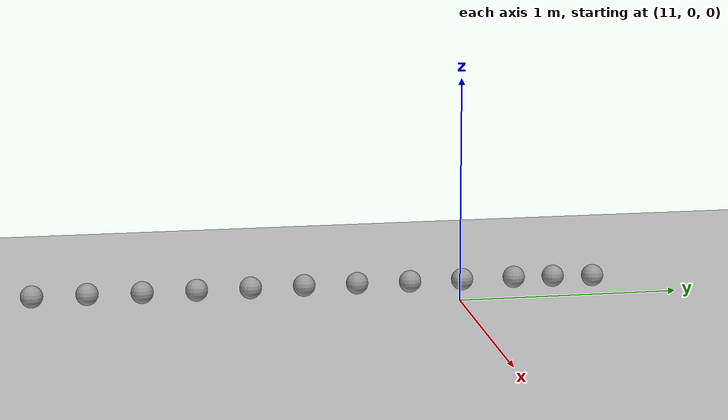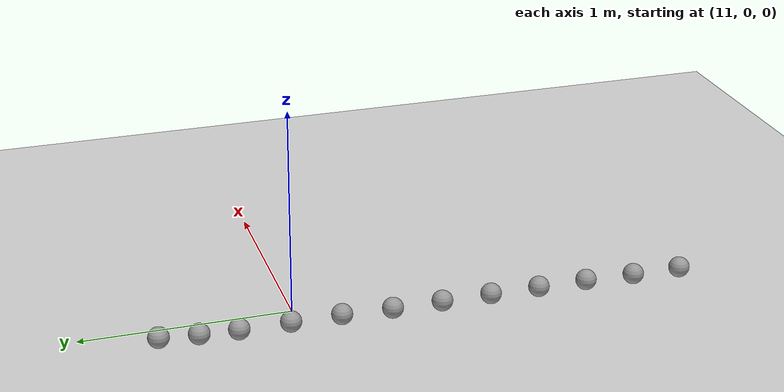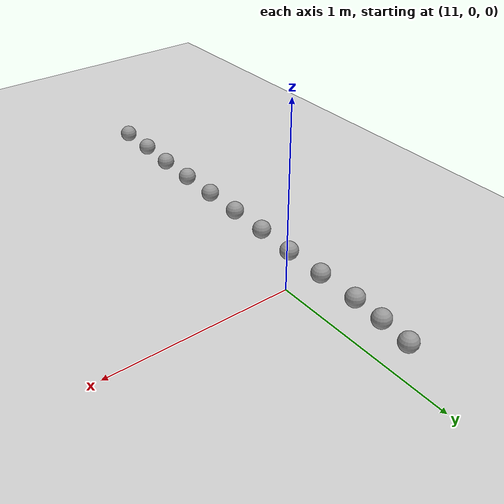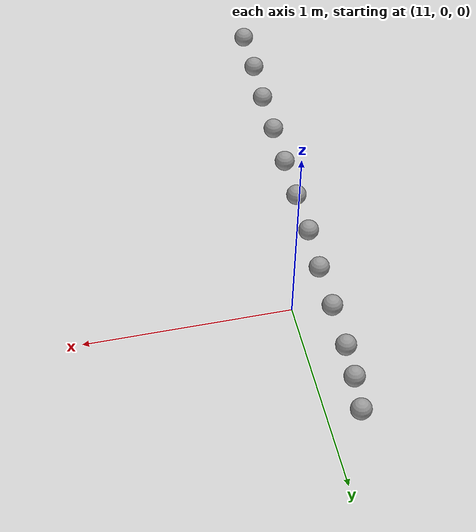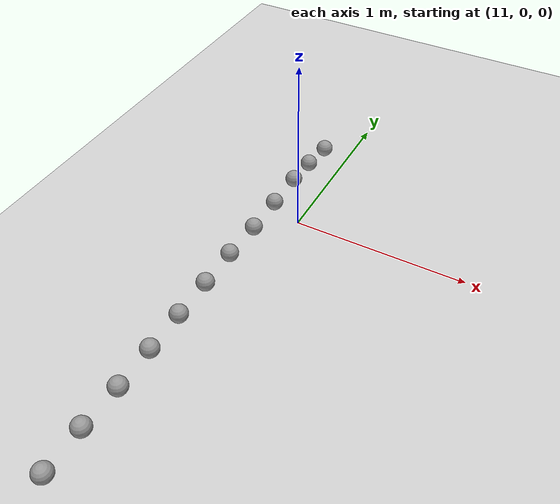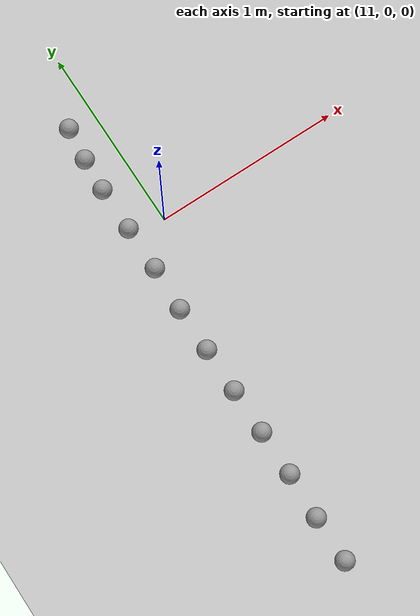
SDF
<sdf version="1.6">
 <world name="default">
  <model name="ground_plane">
   <static>1</static>
   <link name="link">
    <collision name="collision">
     <geometry><plane><normal>0 0 1</normal><size>100 100</size></plane></geometry>
     <surface><friction><ode><mu>100</mu><mu2>50</mu2></ode></friction></surface>
    </collision>
    <visual name="visual">
     <cast_shadows>0</cast_shadows>
     <geometry><plane><normal>0 0 1</normal><size>100 100</size></plane></geometry>
     <material>
      <script><uri>file://media/materials/scripts/gazebo.material</uri><name>Gazebo/Grey</name></script>
     </material>
    </visual>
   </link>
  </model>
  <model name="unit_sphere_0_438">
   <pose>10.850000 0.652000 0.050000 0 -0 0</pose>
   <link name="link">
    <inertial>
     <mass>1</mass>
     <inertia><ixx>0.1</ixx><ixy>0</ixy><ixz>0</ixz><iyy>0.1</iyy><iyz>0</iyz><izz>0.1</izz></inertia>
    </inertial>
    <collision name="collision"><geometry><sphere><radius>0.050000</radius></sphere></geometry></collision>
    <visual name="visual">
     <geometry><sphere><radius>0.050000</radius></sphere></geometry>
     <material>
      <script><name>Gazebo/Grey</name><uri>file://media/materials/scripts/gazebo.material</uri></script>
     </material>
    </visual>
   </link>
  </model>
  <model name="unit_sphere_0_439">
   <pose>10.830000 0.471000 0.050000 0 -0 0</pose>
   <link name="link">
    <inertial>
     <mass>1</mass>
     <inertia><ixx>0.1</ixx><ixy>0</ixy><ixz>0</ixz><iyy>0.1</iyy><iyz>0</iyz><izz>0.1</izz></inertia>
    </inertial>
    <collision name="collision"><geometry><sphere><radius>0.050000</radius></sphere></geometry></collision>
    <visual name="visual">
     <geometry><sphere><radius>0.050000</radius></sphere></geometry>
     <material>
      <script><name>Gazebo/Grey</name><uri>file://media/materials/scripts/gazebo.material</uri></script>
     </material>
    </visual>
   </link>
  </model>
  <model name="unit_sphere_0_440">
   <pose>10.820000 0.290000 0.050000 0 -0 0</pose>
   <link name="link">
    <inertial>
     <mass>1</mass>
     <inertia><ixx>0.1</ixx><ixy>0</ixy><ixz>0</ixz><iyy>0.1</iyy><iyz>0</iyz><izz>0.1</izz></inertia>
    </inertial>
    <collision name="collision"><geometry><sphere><radius>0.050000</radius></sphere></geometry></collision>
    <visual name="visual">
     <geometry><sphere><radius>0.050000</radius></sphere></geometry>
     <material>
      <script><name>Gazebo/Grey</name><uri>file://media/materials/scripts/gazebo.material</uri></script>
     </material>
    </visual>
   </link>
  </model>
  <model name="unit_sphere_0_441">
   <pose>10.820000 0.049000 0.050000 0 -0 0</pose>
   <link name="link">
    <inertial>
     <mass>1</mass>
     <inertia><ixx>0.1</ixx><ixy>0</ixy><ixz>0</ixz><iyy>0.1</iyy><iyz>0</iyz><izz>0.1</izz></inertia>
    </inertial>
    <collision name="collision"><geometry><sphere><radius>0.050000</radius></sphere></geometry></collision>
    <visual name="visual">
     <geometry><sphere><radius>0.050000</radius></sphere></geometry>
     <material>
      <script><name>Gazebo/Grey</name><uri>file://media/materials/scripts/gazebo.material</uri></script>
     </material>
    </visual>
   </link>
  </model>
  <model name="unit_sphere_0_442">
   <pose>10.820000 -0.192000 0.050000 0 -0 0</pose>
   <link name="link">
    <inertial>
     <mass>1</mass>
     <inertia><ixx>0.1</ixx><ixy>0</ixy><ixz>0</ixz><iyy>0.1</iyy><iyz>0</iyz><izz>0.1</izz></inertia>
    </inertial>
    <collision name="collision"><geometry><sphere><radius>0.050000</radius></sphere></geometry></collision>
    <visual name="visual">
     <geometry><sphere><radius>0.050000</radius></sphere></geometry>
     <material>
      <script><name>Gazebo/Grey</name><uri>file://media/materials/scripts/gazebo.material</uri></script>
     </material>
    </visual>
   </link>
  </model>
  <model name="unit_sphere_0_443">
   <pose>10.810000 -0.433000 0.050000 0 -0 0</pose>
   <link name="link">
    <inertial>
     <mass>1</mass>
     <inertia><ixx>0.1</ixx><ixy>0</ixy><ixz>0</ixz><iyy>0.1</iyy><iyz>0</iyz><izz>0.1</izz></inertia>
    </inertial>
    <collision name="collision"><geometry><sphere><radius>0.050000</radius></sphere></geometry></collision>
    <visual name="visual">
     <geometry><sphere><radius>0.050000</radius></sphere></geometry>
     <material>
      <script><name>Gazebo/Grey</name><uri>file://media/materials/scripts/gazebo.material</uri></script>
     </material>
    </visual>
   </link>
  </model>
  <model name="unit_sphere_0_444">
   <pose>10.810000 -0.674000 0.050000 0 -0 0</pose>
   <link name="link">
    <inertial>
     <mass>1</mass>
     <inertia><ixx>0.1</ixx><ixy>0</ixy><ixz>0</ixz><iyy>0.1</iyy><iyz>0</iyz><izz>0.1</izz></inertia>
    </inertial>
    <collision name="collision"><geometry><sphere><radius>0.050000</radius></sphere></geometry></collision>
    <visual name="visual">
     <geometry><sphere><radius>0.050000</radius></sphere></geometry>
     <material>
      <script><name>Gazebo/Grey</name><uri>file://media/materials/scripts/gazebo.material</uri></script>
     </material>
    </visual>
   </link>
  </model>
  <model name="unit_sphere_0_445">
   <pose>10.810000 -0.915000 0.050000 0 -0 0</pose>
   <link name="link">
    <inertial>
     <mass>1</mass>
     <inertia><ixx>0.1</ixx><ixy>0</ixy><ixz>0</ixz><iyy>0.1</iyy><iyz>0</iyz><izz>0.1</izz></inertia>
    </inertial>
    <collision name="collision"><geometry><sphere><radius>0.050000</radius></sphere></geometry></collision>
    <visual name="visual">
     <geometry><sphere><radius>0.050000</radius></sphere></geometry>
     <material>
      <script><name>Gazebo/Grey</name><uri>file://media/materials/scripts/gazebo.material</uri></script>
     </material>
    </visual>
   </link>
  </model>
  <model name="unit_sphere_0_446">
   <pose>10.810000 -1.156000 0.050000 0 -0 0</pose>
   <link name="link">
    <inertial>
     <mass>1</mass>
     <inertia><ixx>0.1</ixx><ixy>0</ixy><ixz>0</ixz><iyy>0.1</iyy><iyz>0</iyz><izz>0.1</izz></inertia>
    </inertial>
    <collision name="collision"><geometry><sphere><radius>0.050000</radius></sphere></geometry></collision>
    <visual name="visual">
     <geometry><sphere><radius>0.050000</radius></sphere></geometry>
     <material>
      <script><name>Gazebo/Grey</name><uri>file://media/materials/scripts/gazebo.material</uri></script>
     </material>
    </visual>
   </link>
  </model>
  <model name="unit_sphere_0_447">
   <pose>10.810000 -1.397000 0.050000 0 -0 0</pose>
   <link name="link">
    <inertial>
     <mass>1</mass>
     <inertia><ixx>0.1</ixx><ixy>0</ixy><ixz>0</ixz><iyy>0.1</iyy><iyz>0</iyz><izz>0.1</izz></inertia>
    </inertial>
    <collision name="collision"><geometry><sphere><radius>0.050000</radius></sphere></geometry></collision>
    <visual name="visual">
     <geometry><sphere><radius>0.050000</radius></sphere></geometry>
     <material>
      <script><name>Gazebo/Grey</name><uri>file://media/materials/scripts/gazebo.material</uri></script>
     </material>
    </visual>
   </link>
  </model>
  <model name="unit_sphere_0_448">
   <pose>10.800000 -1.638000 0.050000 0 -0 0</pose>
   <link name="link">
    <inertial>
     <mass>1</mass>
     <inertia><ixx>0.1</ixx><ixy>0</ixy><ixz>0</ixz><iyy>0.1</iyy><iyz>0</iyz><izz>0.1</izz></inertia>
    </inertial>
    <collision name="collision"><geometry><sphere><radius>0.050000</radius></sphere></geometry></collision>
    <visual name="visual">
     <geometry><sphere><radius>0.050000</radius></sphere></geometry>
     <material>
      <script><name>Gazebo/Grey</name><uri>file://media/materials/scripts/gazebo.material</uri></script>
     </material>
    </visual>
   </link>
  </model>
  <model name="unit_sphere_0_449">
   <pose>10.800000 -1.879000 0.050000 0 -0 0</pose>
   <link name="link">
    <inertial>
     <mass>1</mass>
     <inertia><ixx>0.1</ixx><ixy>0</ixy><ixz>0</ixz><iyy>0.1</iyy><iyz>0</iyz><izz>0.1</izz></inertia>
    </inertial>
    <collision name="collision"><geometry><sphere><radius>0.050000</radius></sphere></geometry></collision>
    <visual name="visual">
     <geometry><sphere><radius>0.050000</radius></sphere></geometry>
     <material>
      <script><name>Gazebo/Grey</name><uri>file://media/materials/scripts/gazebo.material</uri></script>
     </material>
    </visual>
   </link>
  </model>
 </world>
</sdf>
